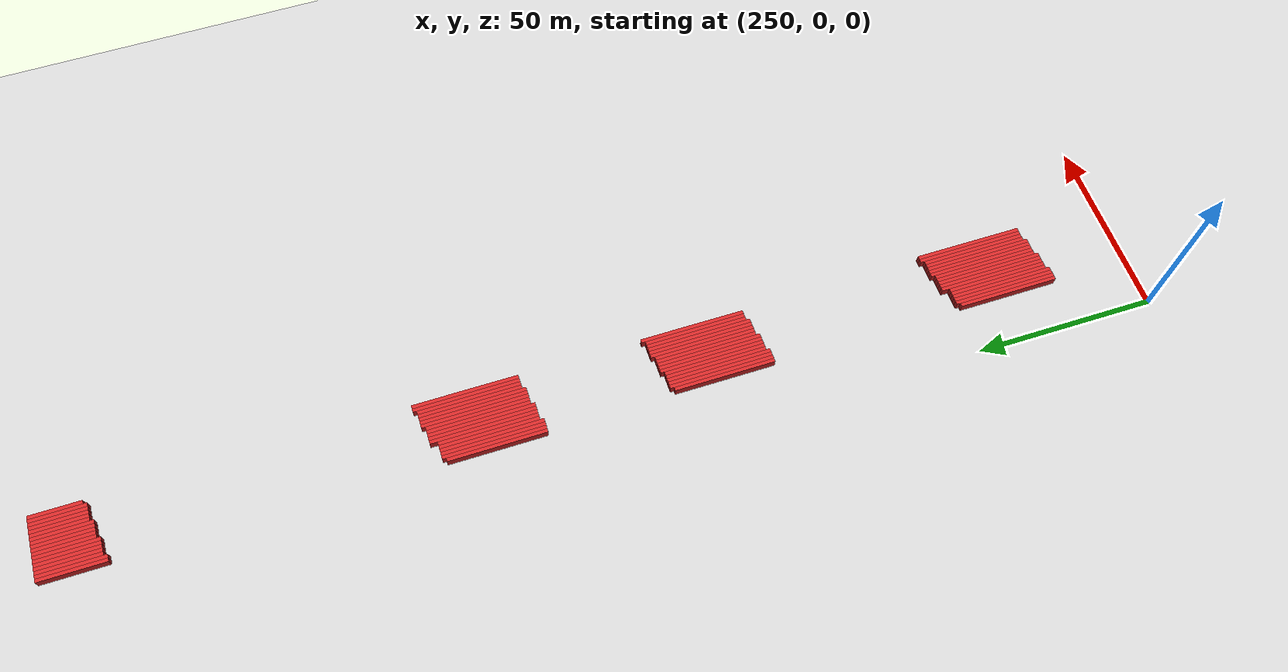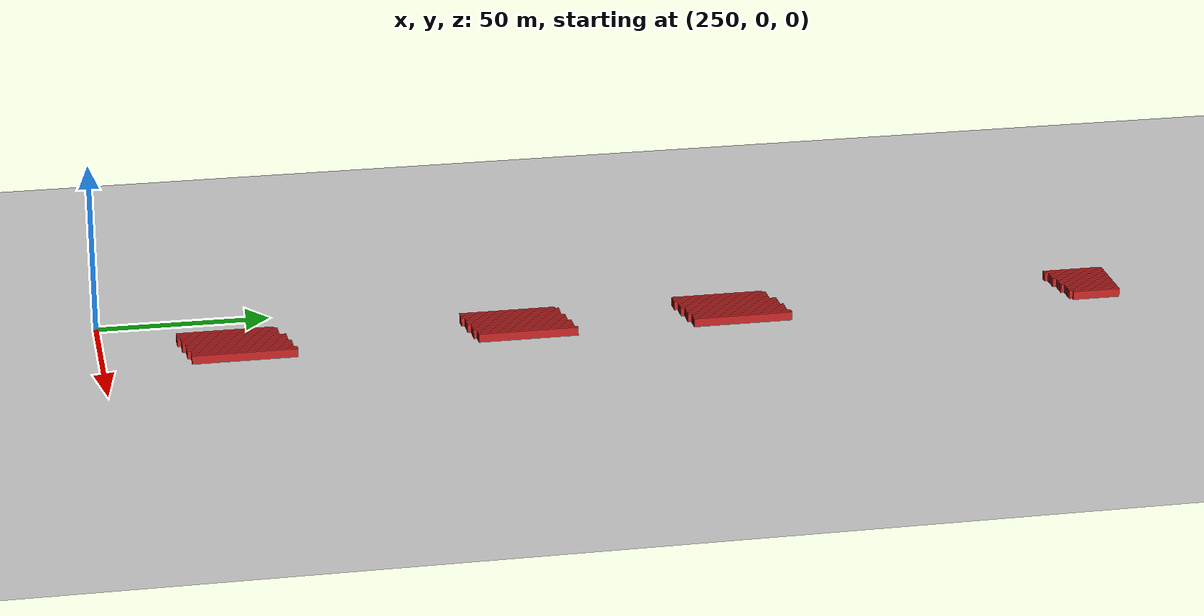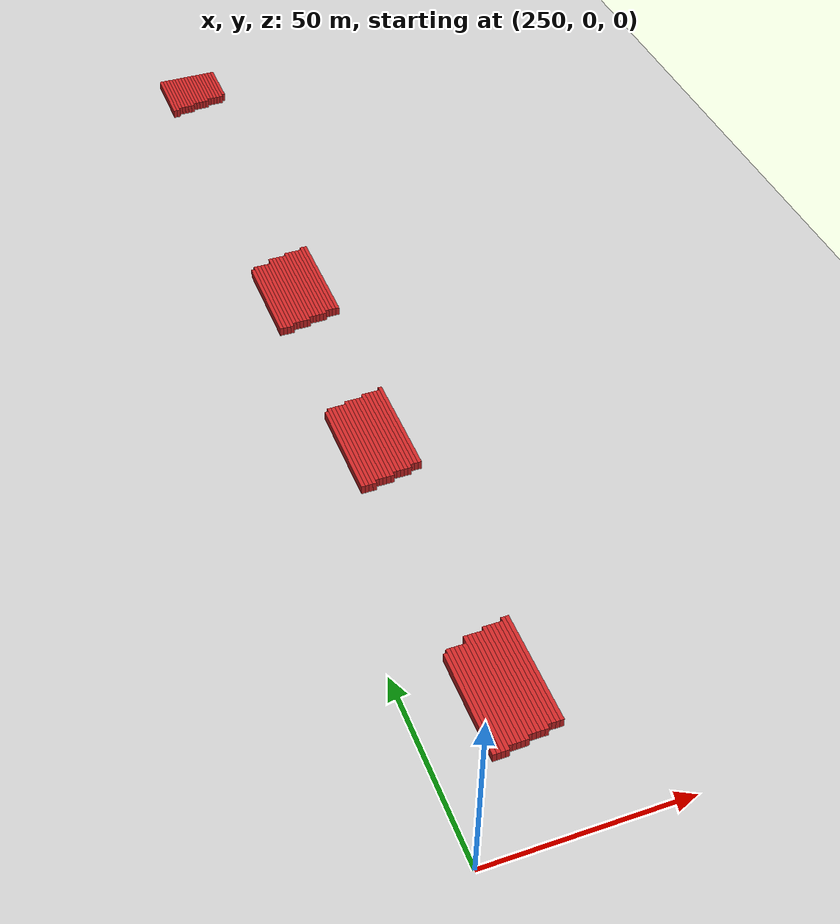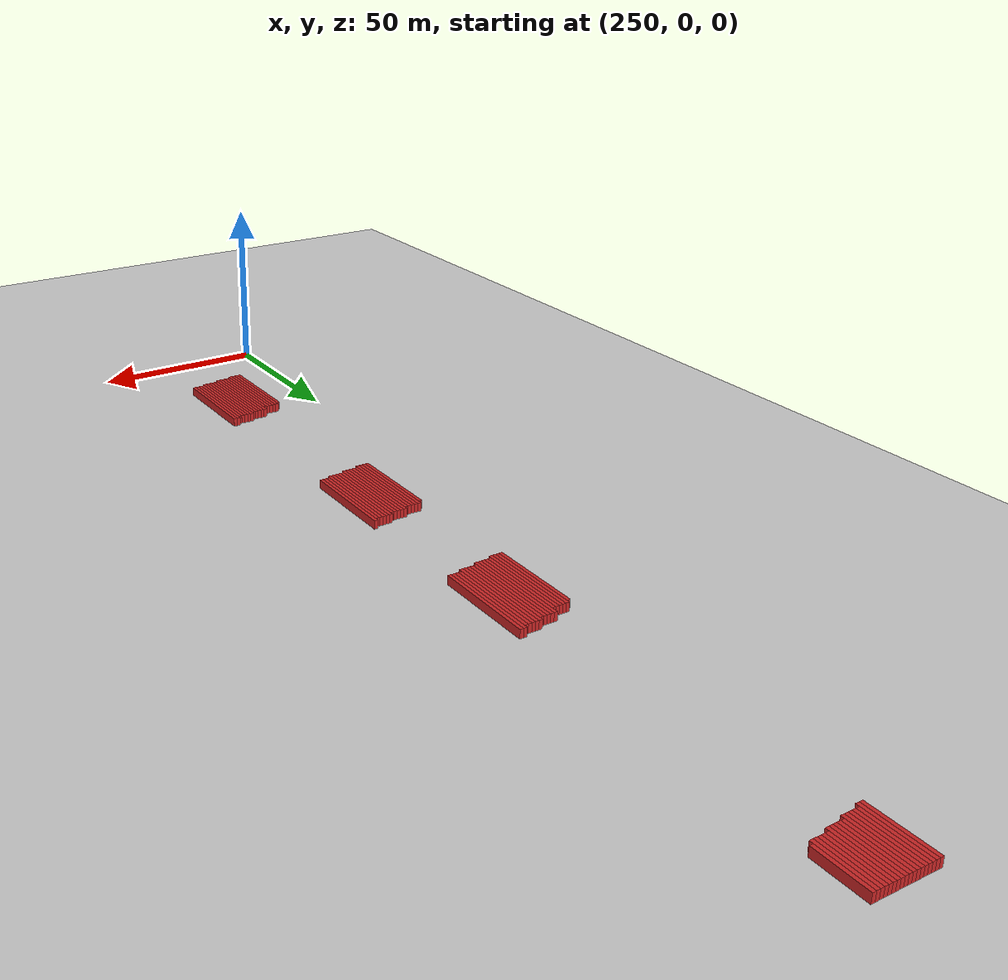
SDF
<sdf version="1.4">
 <world name="1_wall">
  <model name="ground_plane">
   <static>1</static>
   <link name="link">
    <collision name="collision">
     <geometry><plane><normal>0 0 1</normal><size>1000 1000</size></plane></geometry>
     <surface><friction><ode><mu>100</mu><mu2>50</mu2></ode></friction></surface>
    </collision>
    <visual name="visual">
     <cast_shadows>0</cast_shadows>
     <geometry><plane><normal>0 0 1</normal><size>10000 10000</size></plane></geometry>
     <material>
      <script><uri>file://media/materials/scripts/gazebo.material</uri><name>Gazebo/Grey</name></script>
     </material>
    </visual>
    <velocity_decay><linear>0</linear><angular>0</angular></velocity_decay>
   </link>
  </model>
  <model name="Wall_852">
   <static>1</static>
   <link name="Wall_852">
    <collision name="Wall_Collision_852">
     <geometry><box><size>27.0 1.0 2.5</size></box></geometry>
     <pose>0 0 1.25 0 -0 0</pose>
    </collision>
    <visual name="Wall_Visual_852">
     <pose>0 0 1.25 0 -0 0</pose>
     <geometry><box><size>27.0 1.0 2.5</size></box></geometry>
     <material>
      <script><uri>file://media/materials/scripts/gazebo.material</uri><name>Gazebo/Red</name></script>
     </material>
    </visual>
    <velocity_decay><linear>0</linear><angular>0</angular></velocity_decay>
    <pose>262.5 180.5 0 0 0 1.5707963267948966</pose>
   </link>
  </model>
  <model name="Wall_853">
   <static>1</static>
   <link name="Wall_853">
    <collision name="Wall_Collision_853">
     <geometry><box><size>18.0 1.0 2.5</size></box></geometry>
     <pose>0 0 1.25 0 -0 0</pose>
    </collision>
    <visual name="Wall_Visual_853">
     <pose>0 0 1.25 0 -0 0</pose>
     <geometry><box><size>18.0 1.0 2.5</size></box></geometry>
     <material>
      <script><uri>file://media/materials/scripts/gazebo.material</uri><name>Gazebo/Red</name></script>
     </material>
    </visual>
    <velocity_decay><linear>0</linear><angular>0</angular></velocity_decay>
    <pose>262.5 289.0 0 0 0 1.5707963267948966</pose>
   </link>
  </model>
  <model name="Wall_854">
   <static>1</static>
   <link name="Wall_854">
    <collision name="Wall_Collision_854">
     <geometry><box><size>28.0 1.0 2.5</size></box></geometry>
     <pose>0 0 1.25 0 -0 0</pose>
    </collision>
    <visual name="Wall_Visual_854">
     <pose>0 0 1.25 0 -0 0</pose>
     <geometry><box><size>28.0 1.0 2.5</size></box></geometry>
     <material>
      <script><uri>file://media/materials/scripts/gazebo.material</uri><name>Gazebo/Red</name></script>
     </material>
    </visual>
    <velocity_decay><linear>0</linear><angular>0</angular></velocity_decay>
    <pose>263.5 36.0 0 0 0 1.5707963267948966</pose>
   </link>
  </model>
  <model name="Wall_855">
   <static>1</static>
   <link name="Wall_855">
    <collision name="Wall_Collision_855">
     <geometry><box><size>28.0 1.0 2.5</size></box></geometry>
     <pose>0 0 1.25 0 -0 0</pose>
    </collision>
    <visual name="Wall_Visual_855">
     <pose>0 0 1.25 0 -0 0</pose>
     <geometry><box><size>28.0 1.0 2.5</size></box></geometry>
     <material>
      <script><uri>file://media/materials/scripts/gazebo.material</uri><name>Gazebo/Red</name></script>
     </material>
    </visual>
    <velocity_decay><linear>0</linear><angular>0</angular></velocity_decay>
    <pose>263.5 118.0 0 0 0 1.5707963267948966</pose>
   </link>
  </model>
  <model name="Wall_856">
   <static>1</static>
   <link name="Wall_856">
    <collision name="Wall_Collision_856">
     <geometry><box><size>28.0 1.0 2.5</size></box></geometry>
     <pose>0 0 1.25 0 -0 0</pose>
    </collision>
    <visual name="Wall_Visual_856">
     <pose>0 0 1.25 0 -0 0</pose>
     <geometry><box><size>28.0 1.0 2.5</size></box></geometry>
     <material>
      <script><uri>file://media/materials/scripts/gazebo.material</uri><name>Gazebo/Red</name></script>
     </material>
    </visual>
    <velocity_decay><linear>0</linear><angular>0</angular></velocity_decay>
    <pose>263.5 181.0 0 0 0 1.5707963267948966</pose>
   </link>
  </model>
  <model name="Wall_857">
   <static>1</static>
   <link name="Wall_857">
    <collision name="Wall_Collision_857">
     <geometry><box><size>18.0 1.0 2.5</size></box></geometry>
     <pose>0 0 1.25 0 -0 0</pose>
    </collision>
    <visual name="Wall_Visual_857">
     <pose>0 0 1.25 0 -0 0</pose>
     <geometry><box><size>18.0 1.0 2.5</size></box></geometry>
     <material>
      <script><uri>file://media/materials/scripts/gazebo.material</uri><name>Gazebo/Red</name></script>
     </material>
    </visual>
    <velocity_decay><linear>0</linear><angular>0</angular></velocity_decay>
    <pose>263.5 289.0 0 0 0 1.5707963267948966</pose>
   </link>
  </model>
  <model name="Wall_858">
   <static>1</static>
   <link name="Wall_858">
    <collision name="Wall_Collision_858">
     <geometry><box><size>29.0 1.0 2.5</size></box></geometry>
     <pose>0 0 1.25 0 -0 0</pose>
    </collision>
    <visual name="Wall_Visual_858">
     <pose>0 0 1.25 0 -0 0</pose>
     <geometry><box><size>29.0 1.0 2.5</size></box></geometry>
     <material>
      <script><uri>file://media/materials/scripts/gazebo.material</uri><name>Gazebo/Red</name></script>
     </material>
    </visual>
    <velocity_decay><linear>0</linear><angular>0</angular></velocity_decay>
    <pose>264.5 36.5 0 0 0 1.5707963267948966</pose>
   </link>
  </model>
  <model name="Wall_859">
   <static>1</static>
   <link name="Wall_859">
    <collision name="Wall_Collision_859">
     <geometry><box><size>29.0 1.0 2.5</size></box></geometry>
     <pose>0 0 1.25 0 -0 0</pose>
    </collision>
    <visual name="Wall_Visual_859">
     <pose>0 0 1.25 0 -0 0</pose>
     <geometry><box><size>29.0 1.0 2.5</size></box></geometry>
     <material>
      <script><uri>file://media/materials/scripts/gazebo.material</uri><name>Gazebo/Red</name></script>
     </material>
    </visual>
    <velocity_decay><linear>0</linear><angular>0</angular></velocity_decay>
    <pose>264.5 118.5 0 0 0 1.5707963267948966</pose>
   </link>
  </model>
  <model name="Wall_860">
   <static>1</static>
   <link name="Wall_860">
    <collision name="Wall_Collision_860">
     <geometry><box><size>28.0 1.0 2.5</size></box></geometry>
     <pose>0 0 1.25 0 -0 0</pose>
    </collision>
    <visual name="Wall_Visual_860">
     <pose>0 0 1.25 0 -0 0</pose>
     <geometry><box><size>28.0 1.0 2.5</size></box></geometry>
     <material>
      <script><uri>file://media/materials/scripts/gazebo.material</uri><name>Gazebo/Red</name></script>
     </material>
    </visual>
    <velocity_decay><linear>0</linear><angular>0</angular></velocity_decay>
    <pose>264.5 181.0 0 0 0 1.5707963267948966</pose>
   </link>
  </model>
  <model name="Wall_861">
   <static>1</static>
   <link name="Wall_861">
    <collision name="Wall_Collision_861">
     <geometry><box><size>17.0 1.0 2.5</size></box></geometry>
     <pose>0 0 1.25 0 -0 0</pose>
    </collision>
    <visual name="Wall_Visual_861">
     <pose>0 0 1.25 0 -0 0</pose>
     <geometry><box><size>17.0 1.0 2.5</size></box></geometry>
     <material>
      <script><uri>file://media/materials/scripts/gazebo.material</uri><name>Gazebo/Red</name></script>
     </material>
    </visual>
    <velocity_decay><linear>0</linear><angular>0</angular></velocity_decay>
    <pose>264.5 289.5 0 0 0 1.5707963267948966</pose>
   </link>
  </model>
  <model name="Wall_862">
   <static>1</static>
   <link name="Wall_862">
    <collision name="Wall_Collision_862">
     <geometry><box><size>29.0 1.0 2.5</size></box></geometry>
     <pose>0 0 1.25 0 -0 0</pose>
    </collision>
    <visual name="Wall_Visual_862">
     <pose>0 0 1.25 0 -0 0</pose>
     <geometry><box><size>29.0 1.0 2.5</size></box></geometry>
     <material>
      <script><uri>file://media/materials/scripts/gazebo.material</uri><name>Gazebo/Red</name></script>
     </material>
    </visual>
    <velocity_decay><linear>0</linear><angular>0</angular></velocity_decay>
    <pose>265.5 36.5 0 0 0 1.5707963267948966</pose>
   </link>
  </model>
  <model name="Wall_863">
   <static>1</static>
   <link name="Wall_863">
    <collision name="Wall_Collision_863">
     <geometry><box><size>29.0 1.0 2.5</size></box></geometry>
     <pose>0 0 1.25 0 -0 0</pose>
    </collision>
    <visual name="Wall_Visual_863">
     <pose>0 0 1.25 0 -0 0</pose>
     <geometry><box><size>29.0 1.0 2.5</size></box></geometry>
     <material>
      <script><uri>file://media/materials/scripts/gazebo.material</uri><name>Gazebo/Red</name></script>
     </material>
    </visual>
    <velocity_decay><linear>0</linear><angular>0</angular></velocity_decay>
    <pose>265.5 118.5 0 0 0 1.5707963267948966</pose>
   </link>
  </model>
  <model name="Wall_864">
   <static>1</static>
   <link name="Wall_864">
    <collision name="Wall_Collision_864">
     <geometry><box><size>28.0 1.0 2.5</size></box></geometry>
     <pose>0 0 1.25 0 -0 0</pose>
    </collision>
    <visual name="Wall_Visual_864">
     <pose>0 0 1.25 0 -0 0</pose>
     <geometry><box><size>28.0 1.0 2.5</size></box></geometry>
     <material>
      <script><uri>file://media/materials/scripts/gazebo.material</uri><name>Gazebo/Red</name></script>
     </material>
    </visual>
    <velocity_decay><linear>0</linear><angular>0</angular></velocity_decay>
    <pose>265.5 181.0 0 0 0 1.5707963267948966</pose>
   </link>
  </model>
  <model name="Wall_865">
   <static>1</static>
   <link name="Wall_865">
    <collision name="Wall_Collision_865">
     <geometry><box><size>17.0 1.0 2.5</size></box></geometry>
     <pose>0 0 1.25 0 -0 0</pose>
    </collision>
    <visual name="Wall_Visual_865">
     <pose>0 0 1.25 0 -0 0</pose>
     <geometry><box><size>17.0 1.0 2.5</size></box></geometry>
     <material>
      <script><uri>file://media/materials/scripts/gazebo.material</uri><name>Gazebo/Red</name></script>
     </material>
    </visual>
    <velocity_decay><linear>0</linear><angular>0</angular></velocity_decay>
    <pose>265.5 289.5 0 0 0 1.5707963267948966</pose>
   </link>
  </model>
  <model name="Wall_866">
   <static>1</static>
   <link name="Wall_866">
    <collision name="Wall_Collision_866">
     <geometry><box><size>29.0 1.0 2.5</size></box></geometry>
     <pose>0 0 1.25 0 -0 0</pose>
    </collision>
    <visual name="Wall_Visual_866">
     <pose>0 0 1.25 0 -0 0</pose>
     <geometry><box><size>29.0 1.0 2.5</size></box></geometry>
     <material>
      <script><uri>file://media/materials/scripts/gazebo.material</uri><name>Gazebo/Red</name></script>
     </material>
    </visual>
    <velocity_decay><linear>0</linear><angular>0</angular></velocity_decay>
    <pose>266.5 36.5 0 0 0 1.5707963267948966</pose>
   </link>
  </model>
  <model name="Wall_867">
   <static>1</static>
   <link name="Wall_867">
    <collision name="Wall_Collision_867">
     <geometry><box><size>29.0 1.0 2.5</size></box></geometry>
     <pose>0 0 1.25 0 -0 0</pose>
    </collision>
    <visual name="Wall_Visual_867">
     <pose>0 0 1.25 0 -0 0</pose>
     <geometry><box><size>29.0 1.0 2.5</size></box></geometry>
     <material>
      <script><uri>file://media/materials/scripts/gazebo.material</uri><name>Gazebo/Red</name></script>
     </material>
    </visual>
    <velocity_decay><linear>0</linear><angular>0</angular></velocity_decay>
    <pose>266.5 118.5 0 0 0 1.5707963267948966</pose>
   </link>
  </model>
  <model name="Wall_868">
   <static>1</static>
   <link name="Wall_868">
    <collision name="Wall_Collision_868">
     <geometry><box><size>27.0 1.0 2.5</size></box></geometry>
     <pose>0 0 1.25 0 -0 0</pose>
    </collision>
    <visual name="Wall_Visual_868">
     <pose>0 0 1.25 0 -0 0</pose>
     <geometry><box><size>27.0 1.0 2.5</size></box></geometry>
     <material>
      <script><uri>file://media/materials/scripts/gazebo.material</uri><name>Gazebo/Red</name></script>
     </material>
    </visual>
    <velocity_decay><linear>0</linear><angular>0</angular></velocity_decay>
    <pose>266.5 181.5 0 0 0 1.5707963267948966</pose>
   </link>
  </model>
  <model name="Wall_869">
   <static>1</static>
   <link name="Wall_869">
    <collision name="Wall_Collision_869">
     <geometry><box><size>17.0 1.0 2.5</size></box></geometry>
     <pose>0 0 1.25 0 -0 0</pose>
    </collision>
    <visual name="Wall_Visual_869">
     <pose>0 0 1.25 0 -0 0</pose>
     <geometry><box><size>17.0 1.0 2.5</size></box></geometry>
     <material>
      <script><uri>file://media/materials/scripts/gazebo.material</uri><name>Gazebo/Red</name></script>
     </material>
    </visual>
    <velocity_decay><linear>0</linear><angular>0</angular></velocity_decay>
    <pose>266.5 289.5 0 0 0 1.5707963267948966</pose>
   </link>
  </model>
  <model name="Wall_870">
   <static>1</static>
   <link name="Wall_870">
    <collision name="Wall_Collision_870">
     <geometry><box><size>28.0 1.0 2.5</size></box></geometry>
     <pose>0 0 1.25 0 -0 0</pose>
    </collision>
    <visual name="Wall_Visual_870">
     <pose>0 0 1.25 0 -0 0</pose>
     <geometry><box><size>28.0 1.0 2.5</size></box></geometry>
     <material>
      <script><uri>file://media/materials/scripts/gazebo.material</uri><name>Gazebo/Red</name></script>
     </material>
    </visual>
    <velocity_decay><linear>0</linear><angular>0</angular></velocity_decay>
    <pose>267.5 37.0 0 0 0 1.5707963267948966</pose>
   </link>
  </model>
  <model name="Wall_871">
   <static>1</static>
   <link name="Wall_871">
    <collision name="Wall_Collision_871">
     <geometry><box><size>28.0 1.0 2.5</size></box></geometry>
     <pose>0 0 1.25 0 -0 0</pose>
    </collision>
    <visual name="Wall_Visual_871">
     <pose>0 0 1.25 0 -0 0</pose>
     <geometry><box><size>28.0 1.0 2.5</size></box></geometry>
     <material>
      <script><uri>file://media/materials/scripts/gazebo.material</uri><name>Gazebo/Red</name></script>
     </material>
    </visual>
    <velocity_decay><linear>0</linear><angular>0</angular></velocity_decay>
    <pose>267.5 119.0 0 0 0 1.5707963267948966</pose>
   </link>
  </model>
  <model name="Wall_872">
   <static>1</static>
   <link name="Wall_872">
    <collision name="Wall_Collision_872">
     <geometry><box><size>27.0 1.0 2.5</size></box></geometry>
     <pose>0 0 1.25 0 -0 0</pose>
    </collision>
    <visual name="Wall_Visual_872">
     <pose>0 0 1.25 0 -0 0</pose>
     <geometry><box><size>27.0 1.0 2.5</size></box></geometry>
     <material>
      <script><uri>file://media/materials/scripts/gazebo.material</uri><name>Gazebo/Red</name></script>
     </material>
    </visual>
    <velocity_decay><linear>0</linear><angular>0</angular></velocity_decay>
    <pose>267.5 181.5 0 0 0 1.5707963267948966</pose>
   </link>
  </model>
  <model name="Wall_873">
   <static>1</static>
   <link name="Wall_873">
    <collision name="Wall_Collision_873">
     <geometry><box><size>17.0 1.0 2.5</size></box></geometry>
     <pose>0 0 1.25 0 -0 0</pose>
    </collision>
    <visual name="Wall_Visual_873">
     <pose>0 0 1.25 0 -0 0</pose>
     <geometry><box><size>17.0 1.0 2.5</size></box></geometry>
     <material>
      <script><uri>file://media/materials/scripts/gazebo.material</uri><name>Gazebo/Red</name></script>
     </material>
    </visual>
    <velocity_decay><linear>0</linear><angular>0</angular></velocity_decay>
    <pose>267.5 289.5 0 0 0 1.5707963267948966</pose>
   </link>
  </model>
  <model name="Wall_874">
   <static>1</static>
   <link name="Wall_874">
    <collision name="Wall_Collision_874">
     <geometry><box><size>28.0 1.0 2.5</size></box></geometry>
     <pose>0 0 1.25 0 -0 0</pose>
    </collision>
    <visual name="Wall_Visual_874">
     <pose>0 0 1.25 0 -0 0</pose>
     <geometry><box><size>28.0 1.0 2.5</size></box></geometry>
     <material>
      <script><uri>file://media/materials/scripts/gazebo.material</uri><name>Gazebo/Red</name></script>
     </material>
    </visual>
    <velocity_decay><linear>0</linear><angular>0</angular></velocity_decay>
    <pose>268.5 37.0 0 0 0 1.5707963267948966</pose>
   </link>
  </model>
  <model name="Wall_875">
   <static>1</static>
   <link name="Wall_875">
    <collision name="Wall_Collision_875">
     <geometry><box><size>28.0 1.0 2.5</size></box></geometry>
     <pose>0 0 1.25 0 -0 0</pose>
    </collision>
    <visual name="Wall_Visual_875">
     <pose>0 0 1.25 0 -0 0</pose>
     <geometry><box><size>28.0 1.0 2.5</size></box></geometry>
     <material>
      <script><uri>file://media/materials/scripts/gazebo.material</uri><name>Gazebo/Red</name></script>
     </material>
    </visual>
    <velocity_decay><linear>0</linear><angular>0</angular></velocity_decay>
    <pose>268.5 119.0 0 0 0 1.5707963267948966</pose>
   </link>
  </model>
  <model name="Wall_876">
   <static>1</static>
   <link name="Wall_876">
    <collision name="Wall_Collision_876">
     <geometry><box><size>29.0 1.0 2.5</size></box></geometry>
     <pose>0 0 1.25 0 -0 0</pose>
    </collision>
    <visual name="Wall_Visual_876">
     <pose>0 0 1.25 0 -0 0</pose>
     <geometry><box><size>29.0 1.0 2.5</size></box></geometry>
     <material>
      <script><uri>file://media/materials/scripts/gazebo.material</uri><name>Gazebo/Red</name></script>
     </material>
    </visual>
    <velocity_decay><linear>0</linear><angular>0</angular></velocity_decay>
    <pose>268.5 182.5 0 0 0 1.5707963267948966</pose>
   </link>
  </model>
  <model name="Wall_877">
   <static>1</static>
   <link name="Wall_877">
    <collision name="Wall_Collision_877">
     <geometry><box><size>17.0 1.0 2.5</size></box></geometry>
     <pose>0 0 1.25 0 -0 0</pose>
    </collision>
    <visual name="Wall_Visual_877">
     <pose>0 0 1.25 0 -0 0</pose>
     <geometry><box><size>17.0 1.0 2.5</size></box></geometry>
     <material>
      <script><uri>file://media/materials/scripts/gazebo.material</uri><name>Gazebo/Red</name></script>
     </material>
    </visual>
    <velocity_decay><linear>0</linear><angular>0</angular></velocity_decay>
    <pose>268.5 289.5 0 0 0 1.5707963267948966</pose>
   </link>
  </model>
  <model name="Wall_878">
   <static>1</static>
   <link name="Wall_878">
    <collision name="Wall_Collision_878">
     <geometry><box><size>30.0 1.0 2.5</size></box></geometry>
     <pose>0 0 1.25 0 -0 0</pose>
    </collision>
    <visual name="Wall_Visual_878">
     <pose>0 0 1.25 0 -0 0</pose>
     <geometry><box><size>30.0 1.0 2.5</size></box></geometry>
     <material>
      <script><uri>file://media/materials/scripts/gazebo.material</uri><name>Gazebo/Red</name></script>
     </material>
    </visual>
    <velocity_decay><linear>0</linear><angular>0</angular></velocity_decay>
    <pose>269.5 38.0 0 0 0 1.5707963267948966</pose>
   </link>
  </model>
  <model name="Wall_879">
   <static>1</static>
   <link name="Wall_879">
    <collision name="Wall_Collision_879">
     <geometry><box><size>29.0 1.0 2.5</size></box></geometry>
     <pose>0 0 1.25 0 -0 0</pose>
    </collision>
    <visual name="Wall_Visual_879">
     <pose>0 0 1.25 0 -0 0</pose>
     <geometry><box><size>29.0 1.0 2.5</size></box></geometry>
     <material>
      <script><uri>file://media/materials/scripts/gazebo.material</uri><name>Gazebo/Red</name></script>
     </material>
    </visual>
    <velocity_decay><linear>0</linear><angular>0</angular></velocity_decay>
    <pose>269.5 119.5 0 0 0 1.5707963267948966</pose>
   </link>
  </model>
  <model name="Wall_880">
   <static>1</static>
   <link name="Wall_880">
    <collision name="Wall_Collision_880">
     <geometry><box><size>29.0 1.0 2.5</size></box></geometry>
     <pose>0 0 1.25 0 -0 0</pose>
    </collision>
    <visual name="Wall_Visual_880">
     <pose>0 0 1.25 0 -0 0</pose>
     <geometry><box><size>29.0 1.0 2.5</size></box></geometry>
     <material>
      <script><uri>file://media/materials/scripts/gazebo.material</uri><name>Gazebo/Red</name></script>
     </material>
    </visual>
    <velocity_decay><linear>0</linear><angular>0</angular></velocity_decay>
    <pose>269.5 182.5 0 0 0 1.5707963267948966</pose>
   </link>
  </model>
  <model name="Wall_881">
   <static>1</static>
   <link name="Wall_881">
    <collision name="Wall_Collision_881">
     <geometry><box><size>16.0 1.0 2.5</size></box></geometry>
     <pose>0 0 1.25 0 -0 0</pose>
    </collision>
    <visual name="Wall_Visual_881">
     <pose>0 0 1.25 0 -0 0</pose>
     <geometry><box><size>16.0 1.0 2.5</size></box></geometry>
     <material>
      <script><uri>file://media/materials/scripts/gazebo.material</uri><name>Gazebo/Red</name></script>
     </material>
    </visual>
    <velocity_decay><linear>0</linear><angular>0</angular></velocity_decay>
    <pose>269.5 290.0 0 0 0 1.5707963267948966</pose>
   </link>
  </model>
  <model name="Wall_882">
   <static>1</static>
   <link name="Wall_882">
    <collision name="Wall_Collision_882">
     <geometry><box><size>30.0 1.0 2.5</size></box></geometry>
     <pose>0 0 1.25 0 -0 0</pose>
    </collision>
    <visual name="Wall_Visual_882">
     <pose>0 0 1.25 0 -0 0</pose>
     <geometry><box><size>30.0 1.0 2.5</size></box></geometry>
     <material>
      <script><uri>file://media/materials/scripts/gazebo.material</uri><name>Gazebo/Red</name></script>
     </material>
    </visual>
    <velocity_decay><linear>0</linear><angular>0</angular></velocity_decay>
    <pose>270.5 38.0 0 0 0 1.5707963267948966</pose>
   </link>
  </model>
  <model name="Wall_883">
   <static>1</static>
   <link name="Wall_883">
    <collision name="Wall_Collision_883">
     <geometry><box><size>29.0 1.0 2.5</size></box></geometry>
     <pose>0 0 1.25 0 -0 0</pose>
    </collision>
    <visual name="Wall_Visual_883">
     <pose>0 0 1.25 0 -0 0</pose>
     <geometry><box><size>29.0 1.0 2.5</size></box></geometry>
     <material>
      <script><uri>file://media/materials/scripts/gazebo.material</uri><name>Gazebo/Red</name></script>
     </material>
    </visual>
    <velocity_decay><linear>0</linear><angular>0</angular></velocity_decay>
    <pose>270.5 119.5 0 0 0 1.5707963267948966</pose>
   </link>
  </model>
  <model name="Wall_884">
   <static>1</static>
   <link name="Wall_884">
    <collision name="Wall_Collision_884">
     <geometry><box><size>29.0 1.0 2.5</size></box></geometry>
     <pose>0 0 1.25 0 -0 0</pose>
    </collision>
    <visual name="Wall_Visual_884">
     <pose>0 0 1.25 0 -0 0</pose>
     <geometry><box><size>29.0 1.0 2.5</size></box></geometry>
     <material>
      <script><uri>file://media/materials/scripts/gazebo.material</uri><name>Gazebo/Red</name></script>
     </material>
    </visual>
    <velocity_decay><linear>0</linear><angular>0</angular></velocity_decay>
    <pose>270.5 182.5 0 0 0 1.5707963267948966</pose>
   </link>
  </model>
  <model name="Wall_885">
   <static>1</static>
   <link name="Wall_885">
    <collision name="Wall_Collision_885">
     <geometry><box><size>16.0 1.0 2.5</size></box></geometry>
     <pose>0 0 1.25 0 -0 0</pose>
    </collision>
    <visual name="Wall_Visual_885">
     <pose>0 0 1.25 0 -0 0</pose>
     <geometry><box><size>16.0 1.0 2.5</size></box></geometry>
     <material>
      <script><uri>file://media/materials/scripts/gazebo.material</uri><name>Gazebo/Red</name></script>
     </material>
    </visual>
    <velocity_decay><linear>0</linear><angular>0</angular></velocity_decay>
    <pose>270.5 290.0 0 0 0 1.5707963267948966</pose>
   </link>
  </model>
  <model name="Wall_886">
   <static>1</static>
   <link name="Wall_886">
    <collision name="Wall_Collision_886">
     <geometry><box><size>30.0 1.0 2.5</size></box></geometry>
     <pose>0 0 1.25 0 -0 0</pose>
    </collision>
    <visual name="Wall_Visual_886">
     <pose>0 0 1.25 0 -0 0</pose>
     <geometry><box><size>30.0 1.0 2.5</size></box></geometry>
     <material>
      <script><uri>file://media/materials/scripts/gazebo.material</uri><name>Gazebo/Red</name></script>
     </material>
    </visual>
    <velocity_decay><linear>0</linear><angular>0</angular></velocity_decay>
    <pose>271.5 38.0 0 0 0 1.5707963267948966</pose>
   </link>
  </model>
  <model name="Wall_887">
   <static>1</static>
   <link name="Wall_887">
    <collision name="Wall_Collision_887">
     <geometry><box><size>29.0 1.0 2.5</size></box></geometry>
     <pose>0 0 1.25 0 -0 0</pose>
    </collision>
    <visual name="Wall_Visual_887">
     <pose>0 0 1.25 0 -0 0</pose>
     <geometry><box><size>29.0 1.0 2.5</size></box></geometry>
     <material>
      <script><uri>file://media/materials/scripts/gazebo.material</uri><name>Gazebo/Red</name></script>
     </material>
    </visual>
    <velocity_decay><linear>0</linear><angular>0</angular></velocity_decay>
    <pose>271.5 119.5 0 0 0 1.5707963267948966</pose>
   </link>
  </model>
  <model name="Wall_888">
   <static>1</static>
   <link name="Wall_888">
    <collision name="Wall_Collision_888">
     <geometry><box><size>28.0 1.0 2.5</size></box></geometry>
     <pose>0 0 1.25 0 -0 0</pose>
    </collision>
    <visual name="Wall_Visual_888">
     <pose>0 0 1.25 0 -0 0</pose>
     <geometry><box><size>28.0 1.0 2.5</size></box></geometry>
     <material>
      <script><uri>file://media/materials/scripts/gazebo.material</uri><name>Gazebo/Red</name></script>
     </material>
    </visual>
    <velocity_decay><linear>0</linear><angular>0</angular></velocity_decay>
    <pose>271.5 183.0 0 0 0 1.5707963267948966</pose>
   </link>
  </model>
  <model name="Wall_889">
   <static>1</static>
   <link name="Wall_889">
    <collision name="Wall_Collision_889">
     <geometry><box><size>16.0 1.0 2.5</size></box></geometry>
     <pose>0 0 1.25 0 -0 0</pose>
    </collision>
    <visual name="Wall_Visual_889">
     <pose>0 0 1.25 0 -0 0</pose>
     <geometry><box><size>16.0 1.0 2.5</size></box></geometry>
     <material>
      <script><uri>file://media/materials/scripts/gazebo.material</uri><name>Gazebo/Red</name></script>
     </material>
    </visual>
    <velocity_decay><linear>0</linear><angular>0</angular></velocity_decay>
    <pose>271.5 290.0 0 0 0 1.5707963267948966</pose>
   </link>
  </model>
  <model name="Wall_890">
   <static>1</static>
   <link name="Wall_890">
    <collision name="Wall_Collision_890">
     <geometry><box><size>29.0 1.0 2.5</size></box></geometry>
     <pose>0 0 1.25 0 -0 0</pose>
    </collision>
    <visual name="Wall_Visual_890">
     <pose>0 0 1.25 0 -0 0</pose>
     <geometry><box><size>29.0 1.0 2.5</size></box></geometry>
     <material>
      <script><uri>file://media/materials/scripts/gazebo.material</uri><name>Gazebo/Red</name></script>
     </material>
    </visual>
    <velocity_decay><linear>0</linear><angular>0</angular></velocity_decay>
    <pose>272.5 38.5 0 0 0 1.5707963267948966</pose>
   </link>
  </model>
  <model name="Wall_891">
   <static>1</static>
   <link name="Wall_891">
    <collision name="Wall_Collision_891">
     <geometry><box><size>28.0 1.0 2.5</size></box></geometry>
     <pose>0 0 1.25 0 -0 0</pose>
    </collision>
    <visual name="Wall_Visual_891">
     <pose>0 0 1.25 0 -0 0</pose>
     <geometry><box><size>28.0 1.0 2.5</size></box></geometry>
     <material>
      <script><uri>file://media/materials/scripts/gazebo.material</uri><name>Gazebo/Red</name></script>
     </material>
    </visual>
    <velocity_decay><linear>0</linear><angular>0</angular></velocity_decay>
    <pose>272.5 120.0 0 0 0 1.5707963267948966</pose>
   </link>
  </model>
  <model name="Wall_892">
   <static>1</static>
   <link name="Wall_892">
    <collision name="Wall_Collision_892">
     <geometry><box><size>28.0 1.0 2.5</size></box></geometry>
     <pose>0 0 1.25 0 -0 0</pose>
    </collision>
    <visual name="Wall_Visual_892">
     <pose>0 0 1.25 0 -0 0</pose>
     <geometry><box><size>28.0 1.0 2.5</size></box></geometry>
     <material>
      <script><uri>file://media/materials/scripts/gazebo.material</uri><name>Gazebo/Red</name></script>
     </material>
    </visual>
    <velocity_decay><linear>0</linear><angular>0</angular></velocity_decay>
    <pose>272.5 183.0 0 0 0 1.5707963267948966</pose>
   </link>
  </model>
  <model name="Wall_893">
   <static>1</static>
   <link name="Wall_893">
    <collision name="Wall_Collision_893">
     <geometry><box><size>16.0 1.0 2.5</size></box></geometry>
     <pose>0 0 1.25 0 -0 0</pose>
    </collision>
    <visual name="Wall_Visual_893">
     <pose>0 0 1.25 0 -0 0</pose>
     <geometry><box><size>16.0 1.0 2.5</size></box></geometry>
     <material>
      <script><uri>file://media/materials/scripts/gazebo.material</uri><name>Gazebo/Red</name></script>
     </material>
    </visual>
    <velocity_decay><linear>0</linear><angular>0</angular></velocity_decay>
    <pose>272.5 290.0 0 0 0 1.5707963267948966</pose>
   </link>
  </model>
  <model name="Wall_894">
   <static>1</static>
   <link name="Wall_894">
    <collision name="Wall_Collision_894">
     <geometry><box><size>29.0 1.0 2.5</size></box></geometry>
     <pose>0 0 1.25 0 -0 0</pose>
    </collision>
    <visual name="Wall_Visual_894">
     <pose>0 0 1.25 0 -0 0</pose>
     <geometry><box><size>29.0 1.0 2.5</size></box></geometry>
     <material>
      <script><uri>file://media/materials/scripts/gazebo.material</uri><name>Gazebo/Red</name></script>
     </material>
    </visual>
    <velocity_decay><linear>0</linear><angular>0</angular></velocity_decay>
    <pose>273.5 38.5 0 0 0 1.5707963267948966</pose>
   </link>
  </model>
  <model name="Wall_895">
   <static>1</static>
   <link name="Wall_895">
    <collision name="Wall_Collision_895">
     <geometry><box><size>28.0 1.0 2.5</size></box></geometry>
     <pose>0 0 1.25 0 -0 0</pose>
    </collision>
    <visual name="Wall_Visual_895">
     <pose>0 0 1.25 0 -0 0</pose>
     <geometry><box><size>28.0 1.0 2.5</size></box></geometry>
     <material>
      <script><uri>file://media/materials/scripts/gazebo.material</uri><name>Gazebo/Red</name></script>
     </material>
    </visual>
    <velocity_decay><linear>0</linear><angular>0</angular></velocity_decay>
    <pose>273.5 120.0 0 0 0 1.5707963267948966</pose>
   </link>
  </model>
  <model name="Wall_896">
   <static>1</static>
   <link name="Wall_896">
    <collision name="Wall_Collision_896">
     <geometry><box><size>29.0 1.0 2.5</size></box></geometry>
     <pose>0 0 1.25 0 -0 0</pose>
    </collision>
    <visual name="Wall_Visual_896">
     <pose>0 0 1.25 0 -0 0</pose>
     <geometry><box><size>29.0 1.0 2.5</size></box></geometry>
     <material>
      <script><uri>file://media/materials/scripts/gazebo.material</uri><name>Gazebo/Red</name></script>
     </material>
    </visual>
    <velocity_decay><linear>0</linear><angular>0</angular></velocity_decay>
    <pose>273.5 183.5 0 0 0 1.5707963267948966</pose>
   </link>
  </model>
  <model name="Wall_897">
   <static>1</static>
   <link name="Wall_897">
    <collision name="Wall_Collision_897">
     <geometry><box><size>16.0 1.0 2.5</size></box></geometry>
     <pose>0 0 1.25 0 -0 0</pose>
    </collision>
    <visual name="Wall_Visual_897">
     <pose>0 0 1.25 0 -0 0</pose>
     <geometry><box><size>16.0 1.0 2.5</size></box></geometry>
     <material>
      <script><uri>file://media/materials/scripts/gazebo.material</uri><name>Gazebo/Red</name></script>
     </material>
    </visual>
    <velocity_decay><linear>0</linear><angular>0</angular></velocity_decay>
    <pose>273.5 290.0 0 0 0 1.5707963267948966</pose>
   </link>
  </model>
  <model name="Wall_898">
   <static>1</static>
   <link name="Wall_898">
    <collision name="Wall_Collision_898">
     <geometry><box><size>30.0 1.0 2.5</size></box></geometry>
     <pose>0 0 1.25 0 -0 0</pose>
    </collision>
    <visual name="Wall_Visual_898">
     <pose>0 0 1.25 0 -0 0</pose>
     <geometry><box><size>30.0 1.0 2.5</size></box></geometry>
     <material>
      <script><uri>file://media/materials/scripts/gazebo.material</uri><name>Gazebo/Red</name></script>
     </material>
    </visual>
    <velocity_decay><linear>0</linear><angular>0</angular></velocity_decay>
    <pose>274.5 39.0 0 0 0 1.5707963267948966</pose>
   </link>
  </model>
  <model name="Wall_899">
   <static>1</static>
   <link name="Wall_899">
    <collision name="Wall_Collision_899">
     <geometry><box><size>29.0 1.0 2.5</size></box></geometry>
     <pose>0 0 1.25 0 -0 0</pose>
    </collision>
    <visual name="Wall_Visual_899">
     <pose>0 0 1.25 0 -0 0</pose>
     <geometry><box><size>29.0 1.0 2.5</size></box></geometry>
     <material>
      <script><uri>file://media/materials/scripts/gazebo.material</uri><name>Gazebo/Red</name></script>
     </material>
    </visual>
    <velocity_decay><linear>0</linear><angular>0</angular></velocity_decay>
    <pose>274.5 120.5 0 0 0 1.5707963267948966</pose>
   </link>
  </model>
  <model name="Wall_900">
   <static>1</static>
   <link name="Wall_900">
    <collision name="Wall_Collision_900">
     <geometry><box><size>29.0 1.0 2.5</size></box></geometry>
     <pose>0 0 1.25 0 -0 0</pose>
    </collision>
    <visual name="Wall_Visual_900">
     <pose>0 0 1.25 0 -0 0</pose>
     <geometry><box><size>29.0 1.0 2.5</size></box></geometry>
     <material>
      <script><uri>file://media/materials/scripts/gazebo.material</uri><name>Gazebo/Red</name></script>
     </material>
    </visual>
    <velocity_decay><linear>0</linear><angular>0</angular></velocity_decay>
    <pose>274.5 183.5 0 0 0 1.5707963267948966</pose>
   </link>
  </model>
  <model name="Wall_901">
   <static>1</static>
   <link name="Wall_901">
    <collision name="Wall_Collision_901">
     <geometry><box><size>15.0 1.0 2.5</size></box></geometry>
     <pose>0 0 1.25 0 -0 0</pose>
    </collision>
    <visual name="Wall_Visual_901">
     <pose>0 0 1.25 0 -0 0</pose>
     <geometry><box><size>15.0 1.0 2.5</size></box></geometry>
     <material>
      <script><uri>file://media/materials/scripts/gazebo.material</uri><name>Gazebo/Red</name></script>
     </material>
    </visual>
    <velocity_decay><linear>0</linear><angular>0</angular></velocity_decay>
    <pose>274.5 290.5 0 0 0 1.5707963267948966</pose>
   </link>
  </model>
  <model name="Wall_902">
   <static>1</static>
   <link name="Wall_902">
    <collision name="Wall_Collision_902">
     <geometry><box><size>30.0 1.0 2.5</size></box></geometry>
     <pose>0 0 1.25 0 -0 0</pose>
    </collision>
    <visual name="Wall_Visual_902">
     <pose>0 0 1.25 0 -0 0</pose>
     <geometry><box><size>30.0 1.0 2.5</size></box></geometry>
     <material>
      <script><uri>file://media/materials/scripts/gazebo.material</uri><name>Gazebo/Red</name></script>
     </material>
    </visual>
    <velocity_decay><linear>0</linear><angular>0</angular></velocity_decay>
    <pose>275.5 39.0 0 0 0 1.5707963267948966</pose>
   </link>
  </model>
  <model name="Wall_903">
   <static>1</static>
   <link name="Wall_903">
    <collision name="Wall_Collision_903">
     <geometry><box><size>29.0 1.0 2.5</size></box></geometry>
     <pose>0 0 1.25 0 -0 0</pose>
    </collision>
    <visual name="Wall_Visual_903">
     <pose>0 0 1.25 0 -0 0</pose>
     <geometry><box><size>29.0 1.0 2.5</size></box></geometry>
     <material>
      <script><uri>file://media/materials/scripts/gazebo.material</uri><name>Gazebo/Red</name></script>
     </material>
    </visual>
    <velocity_decay><linear>0</linear><angular>0</angular></velocity_decay>
    <pose>275.5 120.5 0 0 0 1.5707963267948966</pose>
   </link>
  </model>
  <model name="Wall_904">
   <static>1</static>
   <link name="Wall_904">
    <collision name="Wall_Collision_904">
     <geometry><box><size>29.0 1.0 2.5</size></box></geometry>
     <pose>0 0 1.25 0 -0 0</pose>
    </collision>
    <visual name="Wall_Visual_904">
     <pose>0 0 1.25 0 -0 0</pose>
     <geometry><box><size>29.0 1.0 2.5</size></box></geometry>
     <material>
      <script><uri>file://media/materials/scripts/gazebo.material</uri><name>Gazebo/Red</name></script>
     </material>
    </visual>
    <velocity_decay><linear>0</linear><angular>0</angular></velocity_decay>
    <pose>275.5 183.5 0 0 0 1.5707963267948966</pose>
   </link>
  </model>
  <model name="Wall_905">
   <static>1</static>
   <link name="Wall_905">
    <collision name="Wall_Collision_905">
     <geometry><box><size>15.0 1.0 2.5</size></box></geometry>
     <pose>0 0 1.25 0 -0 0</pose>
    </collision>
    <visual name="Wall_Visual_905">
     <pose>0 0 1.25 0 -0 0</pose>
     <geometry><box><size>15.0 1.0 2.5</size></box></geometry>
     <material>
      <script><uri>file://media/materials/scripts/gazebo.material</uri><name>Gazebo/Red</name></script>
     </material>
    </visual>
    <velocity_decay><linear>0</linear><angular>0</angular></velocity_decay>
    <pose>275.5 290.5 0 0 0 1.5707963267948966</pose>
   </link>
  </model>
  <model name="Wall_906">
   <static>1</static>
   <link name="Wall_906">
    <collision name="Wall_Collision_906">
     <geometry><box><size>30.0 1.0 2.5</size></box></geometry>
     <pose>0 0 1.25 0 -0 0</pose>
    </collision>
    <visual name="Wall_Visual_906">
     <pose>0 0 1.25 0 -0 0</pose>
     <geometry><box><size>30.0 1.0 2.5</size></box></geometry>
     <material>
      <script><uri>file://media/materials/scripts/gazebo.material</uri><name>Gazebo/Red</name></script>
     </material>
    </visual>
    <velocity_decay><linear>0</linear><angular>0</angular></velocity_decay>
    <pose>276.5 39.0 0 0 0 1.5707963267948966</pose>
   </link>
  </model>
  <model name="Wall_907">
   <static>1</static>
   <link name="Wall_907">
    <collision name="Wall_Collision_907">
     <geometry><box><size>29.0 1.0 2.5</size></box></geometry>
     <pose>0 0 1.25 0 -0 0</pose>
    </collision>
    <visual name="Wall_Visual_907">
     <pose>0 0 1.25 0 -0 0</pose>
     <geometry><box><size>29.0 1.0 2.5</size></box></geometry>
     <material>
      <script><uri>file://media/materials/scripts/gazebo.material</uri><name>Gazebo/Red</name></script>
     </material>
    </visual>
    <velocity_decay><linear>0</linear><angular>0</angular></velocity_decay>
    <pose>276.5 120.5 0 0 0 1.5707963267948966</pose>
   </link>
  </model>
  <model name="Wall_908">
   <static>1</static>
   <link name="Wall_908">
    <collision name="Wall_Collision_908">
     <geometry><box><size>28.0 1.0 2.5</size></box></geometry>
     <pose>0 0 1.25 0 -0 0</pose>
    </collision>
    <visual name="Wall_Visual_908">
     <pose>0 0 1.25 0 -0 0</pose>
     <geometry><box><size>28.0 1.0 2.5</size></box></geometry>
     <material>
      <script><uri>file://media/materials/scripts/gazebo.material</uri><name>Gazebo/Red</name></script>
     </material>
    </visual>
    <velocity_decay><linear>0</linear><angular>0</angular></velocity_decay>
    <pose>276.5 184.0 0 0 0 1.5707963267948966</pose>
   </link>
  </model>
  <model name="Wall_909">
   <static>1</static>
   <link name="Wall_909">
    <collision name="Wall_Collision_909">
     <geometry><box><size>15.0 1.0 2.5</size></box></geometry>
     <pose>0 0 1.25 0 -0 0</pose>
    </collision>
    <visual name="Wall_Visual_909">
     <pose>0 0 1.25 0 -0 0</pose>
     <geometry><box><size>15.0 1.0 2.5</size></box></geometry>
     <material>
      <script><uri>file://media/materials/scripts/gazebo.material</uri><name>Gazebo/Red</name></script>
     </material>
    </visual>
    <velocity_decay><linear>0</linear><angular>0</angular></velocity_decay>
    <pose>276.5 290.5 0 0 0 1.5707963267948966</pose>
   </link>
  </model>
  <model name="Wall_910">
   <static>1</static>
   <link name="Wall_910">
    <collision name="Wall_Collision_910">
     <geometry><box><size>29.0 1.0 2.5</size></box></geometry>
     <pose>0 0 1.25 0 -0 0</pose>
    </collision>
    <visual name="Wall_Visual_910">
     <pose>0 0 1.25 0 -0 0</pose>
     <geometry><box><size>29.0 1.0 2.5</size></box></geometry>
     <material>
      <script><uri>file://media/materials/scripts/gazebo.material</uri><name>Gazebo/Red</name></script>
     </material>
    </visual>
    <velocity_decay><linear>0</linear><angular>0</angular></velocity_decay>
    <pose>277.5 39.5 0 0 0 1.5707963267948966</pose>
   </link>
  </model>
  <model name="Wall_911">
   <static>1</static>
   <link name="Wall_911">
    <collision name="Wall_Collision_911">
     <geometry><box><size>28.0 1.0 2.5</size></box></geometry>
     <pose>0 0 1.25 0 -0 0</pose>
    </collision>
    <visual name="Wall_Visual_911">
     <pose>0 0 1.25 0 -0 0</pose>
     <geometry><box><size>28.0 1.0 2.5</size></box></geometry>
     <material>
      <script><uri>file://media/materials/scripts/gazebo.material</uri><name>Gazebo/Red</name></script>
     </material>
    </visual>
    <velocity_decay><linear>0</linear><angular>0</angular></velocity_decay>
    <pose>277.5 121.0 0 0 0 1.5707963267948966</pose>
   </link>
  </model>
  <model name="Wall_912">
   <static>1</static>
   <link name="Wall_912">
    <collision name="Wall_Collision_912">
     <geometry><box><size>28.0 1.0 2.5</size></box></geometry>
     <pose>0 0 1.25 0 -0 0</pose>
    </collision>
    <visual name="Wall_Visual_912">
     <pose>0 0 1.25 0 -0 0</pose>
     <geometry><box><size>28.0 1.0 2.5</size></box></geometry>
     <material>
      <script><uri>file://media/materials/scripts/gazebo.material</uri><name>Gazebo/Red</name></script>
     </material>
    </visual>
    <velocity_decay><linear>0</linear><angular>0</angular></velocity_decay>
    <pose>277.5 184.0 0 0 0 1.5707963267948966</pose>
   </link>
  </model>
  <model name="Wall_913">
   <static>1</static>
   <link name="Wall_913">
    <collision name="Wall_Collision_913">
     <geometry><box><size>15.0 1.0 2.5</size></box></geometry>
     <pose>0 0 1.25 0 -0 0</pose>
    </collision>
    <visual name="Wall_Visual_913">
     <pose>0 0 1.25 0 -0 0</pose>
     <geometry><box><size>15.0 1.0 2.5</size></box></geometry>
     <material>
      <script><uri>file://media/materials/scripts/gazebo.material</uri><name>Gazebo/Red</name></script>
     </material>
    </visual>
    <velocity_decay><linear>0</linear><angular>0</angular></velocity_decay>
    <pose>277.5 290.5 0 0 0 1.5707963267948966</pose>
   </link>
  </model>
  <model name="Wall_914">
   <static>1</static>
   <link name="Wall_914">
    <collision name="Wall_Collision_914">
     <geometry><box><size>29.0 1.0 2.5</size></box></geometry>
     <pose>0 0 1.25 0 -0 0</pose>
    </collision>
    <visual name="Wall_Visual_914">
     <pose>0 0 1.25 0 -0 0</pose>
     <geometry><box><size>29.0 1.0 2.5</size></box></geometry>
     <material>
      <script><uri>file://media/materials/scripts/gazebo.material</uri><name>Gazebo/Red</name></script>
     </material>
    </visual>
    <velocity_decay><linear>0</linear><angular>0</angular></velocity_decay>
    <pose>278.5 39.5 0 0 0 1.5707963267948966</pose>
   </link>
  </model>
  <model name="Wall_915">
   <static>1</static>
   <link name="Wall_915">
    <collision name="Wall_Collision_915">
     <geometry><box><size>28.0 1.0 2.5</size></box></geometry>
     <pose>0 0 1.25 0 -0 0</pose>
    </collision>
    <visual name="Wall_Visual_915">
     <pose>0 0 1.25 0 -0 0</pose>
     <geometry><box><size>28.0 1.0 2.5</size></box></geometry>
     <material>
      <script><uri>file://media/materials/scripts/gazebo.material</uri><name>Gazebo/Red</name></script>
     </material>
    </visual>
    <velocity_decay><linear>0</linear><angular>0</angular></velocity_decay>
    <pose>278.5 121.0 0 0 0 1.5707963267948966</pose>
   </link>
  </model>
  <model name="Wall_916">
   <static>1</static>
   <link name="Wall_916">
    <collision name="Wall_Collision_916">
     <geometry><box><size>29.0 1.0 2.5</size></box></geometry>
     <pose>0 0 1.25 0 -0 0</pose>
    </collision>
    <visual name="Wall_Visual_916">
     <pose>0 0 1.25 0 -0 0</pose>
     <geometry><box><size>29.0 1.0 2.5</size></box></geometry>
     <material>
      <script><uri>file://media/materials/scripts/gazebo.material</uri><name>Gazebo/Red</name></script>
     </material>
    </visual>
    <velocity_decay><linear>0</linear><angular>0</angular></velocity_decay>
    <pose>278.5 184.5 0 0 0 1.5707963267948966</pose>
   </link>
  </model>
  <model name="Wall_917">
   <static>1</static>
   <link name="Wall_917">
    <collision name="Wall_Collision_917">
     <geometry><box><size>15.0 1.0 2.5</size></box></geometry>
     <pose>0 0 1.25 0 -0 0</pose>
    </collision>
    <visual name="Wall_Visual_917">
     <pose>0 0 1.25 0 -0 0</pose>
     <geometry><box><size>15.0 1.0 2.5</size></box></geometry>
     <material>
      <script><uri>file://media/materials/scripts/gazebo.material</uri><name>Gazebo/Red</name></script>
     </material>
    </visual>
    <velocity_decay><linear>0</linear><angular>0</angular></velocity_decay>
    <pose>278.5 290.5 0 0 0 1.5707963267948966</pose>
   </link>
  </model>
  <model name="Wall_918">
   <static>1</static>
   <link name="Wall_918">
    <collision name="Wall_Collision_918">
     <geometry><box><size>30.0 1.0 2.5</size></box></geometry>
     <pose>0 0 1.25 0 -0 0</pose>
    </collision>
    <visual name="Wall_Visual_918">
     <pose>0 0 1.25 0 -0 0</pose>
     <geometry><box><size>30.0 1.0 2.5</size></box></geometry>
     <material>
      <script><uri>file://media/materials/scripts/gazebo.material</uri><name>Gazebo/Red</name></script>
     </material>
    </visual>
    <velocity_decay><linear>0</linear><angular>0</angular></velocity_decay>
    <pose>279.5 40.0 0 0 0 1.5707963267948966</pose>
   </link>
  </model>
  <model name="Wall_919">
   <static>1</static>
   <link name="Wall_919">
    <collision name="Wall_Collision_919">
     <geometry><box><size>29.0 1.0 2.5</size></box></geometry>
     <pose>0 0 1.25 0 -0 0</pose>
    </collision>
    <visual name="Wall_Visual_919">
     <pose>0 0 1.25 0 -0 0</pose>
     <geometry><box><size>29.0 1.0 2.5</size></box></geometry>
     <material>
      <script><uri>file://media/materials/scripts/gazebo.material</uri><name>Gazebo/Red</name></script>
     </material>
    </visual>
    <velocity_decay><linear>0</linear><angular>0</angular></velocity_decay>
    <pose>279.5 121.5 0 0 0 1.5707963267948966</pose>
   </link>
  </model>
  <model name="Wall_920">
   <static>1</static>
   <link name="Wall_920">
    <collision name="Wall_Collision_920">
     <geometry><box><size>29.0 1.0 2.5</size></box></geometry>
     <pose>0 0 1.25 0 -0 0</pose>
    </collision>
    <visual name="Wall_Visual_920">
     <pose>0 0 1.25 0 -0 0</pose>
     <geometry><box><size>29.0 1.0 2.5</size></box></geometry>
     <material>
      <script><uri>file://media/materials/scripts/gazebo.material</uri><name>Gazebo/Red</name></script>
     </material>
    </visual>
    <velocity_decay><linear>0</linear><angular>0</angular></velocity_decay>
    <pose>279.5 184.5 0 0 0 1.5707963267948966</pose>
   </link>
  </model>
  <model name="Wall_921">
   <static>1</static>
   <link name="Wall_921">
    <collision name="Wall_Collision_921">
     <geometry><box><size>14.0 1.0 2.5</size></box></geometry>
     <pose>0 0 1.25 0 -0 0</pose>
    </collision>
    <visual name="Wall_Visual_921">
     <pose>0 0 1.25 0 -0 0</pose>
     <geometry><box><size>14.0 1.0 2.5</size></box></geometry>
     <material>
      <script><uri>file://media/materials/scripts/gazebo.material</uri><name>Gazebo/Red</name></script>
     </material>
    </visual>
    <velocity_decay><linear>0</linear><angular>0</angular></velocity_decay>
    <pose>279.5 291.0 0 0 0 1.5707963267948966</pose>
   </link>
  </model>
  <model name="Wall_922">
   <static>1</static>
   <link name="Wall_922">
    <collision name="Wall_Collision_922">
     <geometry><box><size>30.0 1.0 2.5</size></box></geometry>
     <pose>0 0 1.25 0 -0 0</pose>
    </collision>
    <visual name="Wall_Visual_922">
     <pose>0 0 1.25 0 -0 0</pose>
     <geometry><box><size>30.0 1.0 2.5</size></box></geometry>
     <material>
      <script><uri>file://media/materials/scripts/gazebo.material</uri><name>Gazebo/Red</name></script>
     </material>
    </visual>
    <velocity_decay><linear>0</linear><angular>0</angular></velocity_decay>
    <pose>280.5 40.0 0 0 0 1.5707963267948966</pose>
   </link>
  </model>
 </world>
</sdf>
